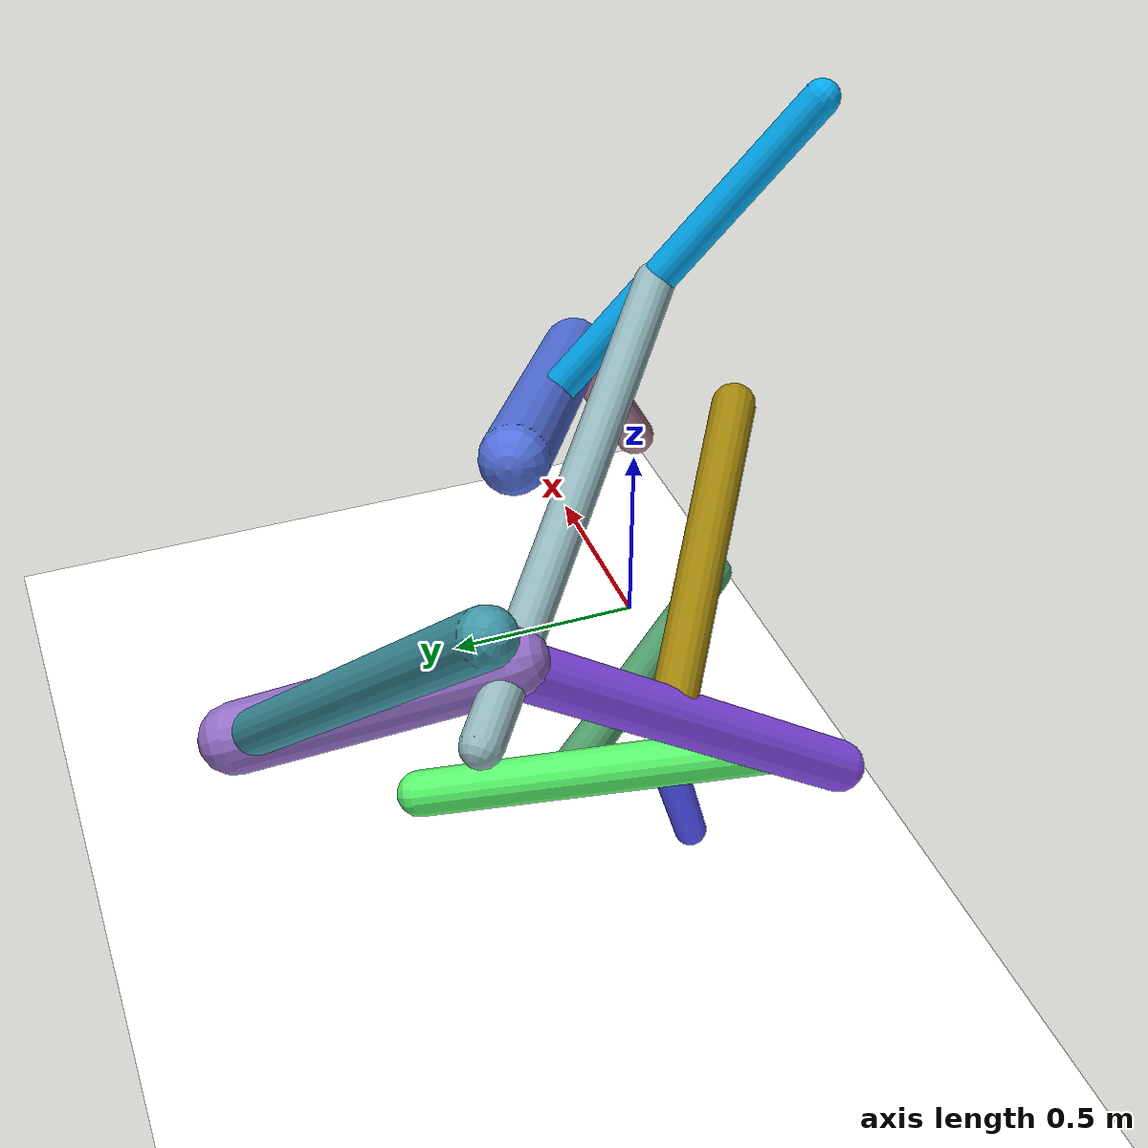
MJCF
<mujoco model="morphology">
  <option timestep="0.01"/>
  <default>
    <default class="/"/>
    <default class="0/"/>
    <default class="0/1/"/>
    <default class="0/1/2/"/>
    <default class="0/1/2/3/"/>
    <default class="0/1/2/3/4/"/>
    <default class="0/1/2/3/4/5/"/>
    <default class="0/1/2/3/4/6/"/>
    <default class="0/1/2/3/4/6/7/"/>
    <default class="0/1/2/3/4/6/8/"/>
    <default class="0/1/2/3/9/"/>
    <default class="0/1/2/3/9/10/"/>
  </default>
  <asset>
    <texture name="texplane" type="2d" builtin="checker" rgb1="0.10000000000000001 0.20000000000000001 0.29999999999999999" rgb2="0.20000000000000001 0.29999999999999999 0.40000000000000002" width="300" height="300"/>
    <material name="MatPlane" class="/" texture="texplane" texrepeat="20 20" specular="1" shininess="1" reflectance="0.5"/>
  </asset>
  <worldbody>
    <light name="//unnamed_light_0" class="/" directional="true" pos="0 0 1.5" dir="0 0 -1.3" cutoff="100" exponent="1" diffuse="1 1 1" specular="0.10000000000000001 0.10000000000000001 0.10000000000000001"/>
    <geom name="ground" class="/" type="plane" size="15 15 0.5" material="MatPlane" rgba="1 1 1 1"/>
    <site name="body" class="/" size="9.9999999999999995e-07 9.9999999999999995e-07 9.9999999999999995e-07" pos="0 0 0.57202539443969724"/>
    <body pos="0 0 0.57202539443969724" name="0/">
      <freejoint name="0/"/>
      <geom name="0/geom" class="0/" type="capsule" contype="1" conaffinity="1" condim="3" size="0.048325278316471418" rgba="0.65786654810356215 0.48459605042689302 0.55591178006933539 1" friction="0.59999999999999998 0.10000000000000001 0.10000000000000001" fromto="0 0 0 -0.31132299422414278 0.29087677871096496 0.51025286072900178"/>
      <site name="0/end0" class="0/" size="0.0050000000000000001" pos="-0.31132299422414278 0.29087677871096496 0.51025286072900178"/>
      <site name="0/attach1" class="0/" size="9.9999999999999995e-07 9.9999999999999995e-07 9.9999999999999995e-07" pos="-0.30348916365727541 0.28355743692595919 0.49741335150106308"/>
      <body pos="-0.30348916365727541 0.28355743692595919 0.49741335150106308" name="0/1/">
        <geom name="0/1/geom" class="0/1/" type="capsule" contype="1" conaffinity="1" condim="3" size="0.067542055484449665" rgba="0.32840603161782445 0.44703614275118597 0.88157883003319637 1" friction="0.59999999999999998 0.10000000000000001 0.10000000000000001" fromto="0 0 0 -0.71814404017979738 0.38578466175071502 0.2554072768330462"/>
        <site name="0/1/end1" class="0/1/" size="0.0050000000000000001" pos="-0.71814404017979738 0.38578466175071502 0.2554072768330462"/>
        <site name="0/1/attach2" class="0/1/" size="9.9999999999999995e-07 9.9999999999999995e-07 9.9999999999999995e-07" pos="-0.41268201968066109 0.221691449717032 0.14676998616908435"/>
        <body pos="-0.41268201968066109 0.221691449717032 0.14676998616908435" name="0/1/2/">
          <joint name="0/1/2/joint/" class="0/1/" type="hinge" axis="-0.54158979530237894 -0.70094836500563784 -0.46406021508016659" limited="true" range="-34.482662211401454 34.482662211401454"/>
          <geom name="0/1/2/geom" class="0/1/2/" type="capsule" contype="1" conaffinity="1" condim="3" size="0.035604595357238179" rgba="0.0086005855445383528 0.66726512791214843 0.94784800107447953 1" friction="0.59999999999999998 0.10000000000000001 0.10000000000000001" fromto="0 0 0 -0.10269667189769871 -0.51391856846307071 0.62499878677368104"/>
          <site name="0/1/2/end2" class="0/1/2/" size="0.0050000000000000001" pos="-0.10269667189769871 -0.51391856846307071 0.62499878677368104"/>
          <site name="0/1/2/attach3" class="0/1/2/" size="9.9999999999999995e-07 9.9999999999999995e-07 9.9999999999999995e-07" pos="-0.043271372437814037 -0.21654023804029512 0.2633440283498798"/>
          <body pos="-0.043271372437814037 -0.21654023804029512 0.2633440283498798" name="0/1/2/3/">
            <joint name="0/1/2/3/joint/" class="0/1/2/" type="hinge" axis="0.99204192109156508 -0.079967704554363195 0.097252213472307281" limited="true" range="-51.234832161259348 51.234832161259348"/>
            <geom name="0/1/2/3/geom" class="0/1/2/3/" type="capsule" contype="1" conaffinity="1" condim="3" size="0.040455796200220905" rgba="0.57593334453008216 0.71687546044022288 0.74257368054151163 1" friction="0.59999999999999998 0.10000000000000001 0.10000000000000001" fromto="0 0 0 -0.70143107524033266 0.59535114004421197 -0.41347300345637283"/>
            <site name="0/1/2/3/end3" class="0/1/2/3/" size="0.0050000000000000001" pos="-0.70143107524033266 0.59535114004421197 -0.41347300345637283"/>
            <site name="0/1/2/3/attach4" class="0/1/2/3/" size="9.9999999999999995e-07 9.9999999999999995e-07 9.9999999999999995e-07" pos="-0.59324721842527028 0.50352831558899502 -0.34970179943965357"/>
            <body pos="-0.59324721842527028 0.50352831558899502 -0.34970179943965357" name="0/1/2/3/4/">
              <joint name="0/1/2/3/4/joint/" class="0/1/2/3/" type="hinge" axis="-0.71861878032780147 -0.57116854921280558 0.3966781276429569" limited="true" range="-50.405345455591686 50.405345455591686"/>
              <geom name="0/1/2/3/4/geom" class="0/1/2/3/4/" type="capsule" contype="1" conaffinity="1" condim="3" size="0.053857237106045855" rgba="0.55847334122370307 0.31822673162847537 0.98521551167278698 1" friction="0.59999999999999998 0.10000000000000001 0.10000000000000001" fromto="0 0 0 0.085193654039955491 -0.73249428861490196 -0.55882228650110732"/>
              <site name="0/1/2/3/4/end4" class="0/1/2/3/4/" size="0.0050000000000000001" pos="0.085193654039955491 -0.73249428861490196 -0.55882228650110732"/>
              <site name="0/1/2/3/4/attach5" class="0/1/2/3/4/" size="9.9999999999999995e-07 9.9999999999999995e-07 9.9999999999999995e-07" pos="0.03813068460738718 -0.32784729109973337 -0.25011576975157307"/>
              <body pos="0.03813068460738718 -0.32784729109973337 -0.25011576975157307" name="0/1/2/3/4/5/">
                <joint name="0/1/2/3/4/5/joint/" class="0/1/2/3/4/" type="hinge" axis="0.99575195191860899 0.073205180660240787 0.055848471552778889" limited="true" range="-47.18558762029582 47.18558762029582"/>
                <geom name="0/1/2/3/4/5/geom" class="0/1/2/3/4/5/" type="capsule" contype="1" conaffinity="1" condim="3" size="0.045520630572976631" rgba="0.63189238685438376 0.52079537782531227 0.037866882308515759 1" friction="0.59999999999999998 0.10000000000000001 0.10000000000000001" fromto="0 0 0 0.50750310990524583 -0.33956048818898438 0.30866617427074639"/>
                <site name="0/1/2/3/4/5/end5" class="0/1/2/3/4/5/" size="0.0050000000000000001" pos="0.50750310990524583 -0.33956048818898438 0.30866617427074639"/>
              </body>
              <site name="0/1/2/3/4/attach6" class="0/1/2/3/4/" size="9.9999999999999995e-07 9.9999999999999995e-07 9.9999999999999995e-07" pos="0.067350338550689323 -0.57907761887431963 -0.44178020780595162"/>
              <body pos="0.067350338550689323 -0.57907761887431963 -0.44178020780595162" name="0/1/2/3/4/6/">
                <geom name="0/1/2/3/4/6/geom" class="0/1/2/3/4/6/" type="capsule" contype="1" conaffinity="1" condim="3" size="0.050032603487645322" rgba="0.35031995582379027 0.98416013096613553 0.42655429548769264 1" friction="0.59999999999999998 0.10000000000000001 0.10000000000000001" fromto="0 0 0 0.37868992065730023 0.64172729771242087 -0.260450458094867"/>
                <site name="0/1/2/3/4/6/end6" class="0/1/2/3/4/6/" size="0.0050000000000000001" pos="0.37868992065730023 0.64172729771242087 -0.260450458094867"/>
                <site name="0/1/2/3/4/6/attach7" class="0/1/2/3/4/6/" size="9.9999999999999995e-07 9.9999999999999995e-07 9.9999999999999995e-07" pos="0.11204430164233339 0.18987008366160979 -0.077060381324682167"/>
                <body pos="0.11204430164233339 0.18987008366160979 -0.077060381324682167" name="0/1/2/3/4/6/7/">
                  <joint name="0/1/2/3/4/6/7/joint/" class="0/1/2/3/4/6/" type="hinge" axis="-0.87740174395213588 0.44453891358311604 -0.18041988255204638" limited="true" range="-39.033968054280081 39.033968054280081"/>
                  <geom name="0/1/2/3/4/6/7/geom" class="0/1/2/3/4/6/7/" type="capsule" contype="1" conaffinity="1" condim="3" size="0.036869917968441565" rgba="0.3118137546496238 0.31867023285188645 0.96593250218934357 1" friction="0.59999999999999998 0.10000000000000001 0.10000000000000001" fromto="0 0 0 0.25793389926639021 -0.18505740197705811 -0.51101035786066018"/>
                  <site name="0/1/2/3/4/6/7/end7" class="0/1/2/3/4/6/7/" size="0.0050000000000000001" pos="0.25793389926639021 -0.18505740197705811 -0.51101035786066018"/>
                </body>
                <site name="0/1/2/3/4/6/attach8" class="0/1/2/3/4/6/" size="9.9999999999999995e-07 9.9999999999999995e-07 9.9999999999999995e-07" pos="0.21698103763367638 0.36769569861751211 -0.14923241302937265"/>
                <body pos="0.21698103763367638 0.36769569861751211 -0.14923241302937265" name="0/1/2/3/4/6/8/">
                  <joint name="0/1/2/3/4/6/8/joint/" class="0/1/2/3/4/6/" type="hinge" axis="-2.7755575615628914e-17 0.37606562791850046 0.92659303013689054" limited="true" range="-69.402902493994091 69.402902493994091"/>
                  <geom name="0/1/2/3/4/6/8/geom" class="0/1/2/3/4/6/8/" type="capsule" contype="1" conaffinity="1" condim="3" size="0.043191733072526439" rgba="0.3305860126291521 0.66460527986464013 0.44583306635220643 1" friction="0.59999999999999998 0.10000000000000001 0.10000000000000001" fromto="0 0 0 0.66810263149675841 -0.63516494473739293 -0.13354988094770714"/>
                  <site name="0/1/2/3/4/6/8/end8" class="0/1/2/3/4/6/8/" size="0.0050000000000000001" pos="0.66810263149675841 -0.63516494473739293 -0.13354988094770714"/>
                </body>
              </body>
            </body>
            <site name="0/1/2/3/attach9" class="0/1/2/3/" size="9.9999999999999995e-07 9.9999999999999995e-07 9.9999999999999995e-07" pos="-0.58705755722617869 0.49827473903465708 -0.34605317607991876"/>
            <body pos="-0.58705755722617869 0.49827473903465708 -0.34605317607991876" name="0/1/2/3/9/">
              <joint name="0/1/2/3/9/joint/" class="0/1/2/3/" type="hinge" axis="-0.71861878032780147 -0.57116854921280558 0.3966781276429569" limited="true" range="-48.161610709644002 48.161610709644002"/>
              <geom name="0/1/2/3/9/geom" class="0/1/2/3/9/" type="capsule" contype="1" conaffinity="1" condim="3" size="0.066728910336162628" rgba="0.58372619744651566 0.43696870388913622 0.79444266182362033 1" friction="0.59999999999999998 0.10000000000000001 0.10000000000000001" fromto="0 0 0 0.17791994126026212 0.472014841939705 -0.18433917220283114"/>
              <site name="0/1/2/3/9/end9" class="0/1/2/3/9/" size="0.0050000000000000001" pos="0.17791994126026212 0.472014841939705 -0.18433917220283114"/>
              <site name="0/1/2/3/9/attach10" class="0/1/2/3/9/" size="9.9999999999999995e-07 9.9999999999999995e-07 9.9999999999999995e-07" pos="0.16965480738569477 0.45008775590437622 -0.17577583789757406"/>
              <body pos="0.16965480738569477 0.45008775590437622 -0.17577583789757406" name="0/1/2/3/9/10/">
                <joint name="0/1/2/3/9/10/joint/" class="0/1/2/3/9/" type="hinge" axis="2.7755575615628914e-17 0.36377925636781533 0.93148518648257594" limited="true" range="-49.073915639892256 49.073915639892256"/>
                <geom name="0/1/2/3/9/10/geom" class="0/1/2/3/9/10/" type="capsule" contype="1" conaffinity="1" condim="3" size="0.043880244914302355" rgba="0.248255719633793 0.60131666040305942 0.65867782450142021 1" friction="0.59999999999999998 0.10000000000000001 0.10000000000000001" fromto="0 0 0 -0.73783703749831864 -0.22653341995594656 0.74834975265067838"/>
                <site name="0/1/2/3/9/10/end10" class="0/1/2/3/9/10/" size="0.0050000000000000001" pos="-0.73783703749831864 -0.22653341995594656 0.74834975265067838"/>
              </body>
            </body>
          </body>
        </body>
      </body>
      <camera name="0/iso" class="0/" mode="trackcom" pos="-2.2999999999999998 -2.2999999999999998 1" xyaxes="0.45000000000000001 -0.45000000000000001 0 0.29999999999999999 0.14999999999999999 0.93999999999999995"/>
    </body>
  </worldbody>
  <actuator>
    <motor name="0/1/2/motor" class="0/1/2/" ctrllimited="true" ctrlrange="-1 1" gear="70" joint="0/1/2/joint/"/>
    <motor name="0/1/2/3/motor" class="0/1/2/3/" ctrllimited="true" ctrlrange="-1 1" gear="72" joint="0/1/2/3/joint/"/>
    <motor name="0/1/2/3/4/motor" class="0/1/2/3/4/" ctrllimited="true" ctrlrange="-1 1" gear="95" joint="0/1/2/3/4/joint/"/>
    <motor name="0/1/2/3/4/5/motor" class="0/1/2/3/4/5/" ctrllimited="true" ctrlrange="-1 1" gear="69" joint="0/1/2/3/4/5/joint/"/>
    <motor name="0/1/2/3/4/6/7/motor" class="0/1/2/3/4/6/7/" ctrllimited="true" ctrlrange="-1 1" gear="84" joint="0/1/2/3/4/6/7/joint/"/>
    <motor name="0/1/2/3/4/6/8/motor" class="0/1/2/3/4/6/8/" ctrllimited="true" ctrlrange="-1 1" gear="97" joint="0/1/2/3/4/6/8/joint/"/>
    <motor name="0/1/2/3/9/motor" class="0/1/2/3/9/" ctrllimited="true" ctrlrange="-1 1" gear="52" joint="0/1/2/3/9/joint/"/>
    <motor name="0/1/2/3/9/10/motor" class="0/1/2/3/9/10/" ctrllimited="true" ctrlrange="-1 1" gear="56" joint="0/1/2/3/9/10/joint/"/>
  </actuator>
  <sensor>
    <subtreelinvel name="velocity" body="0/"/>
  </sensor>
</mujoco>
